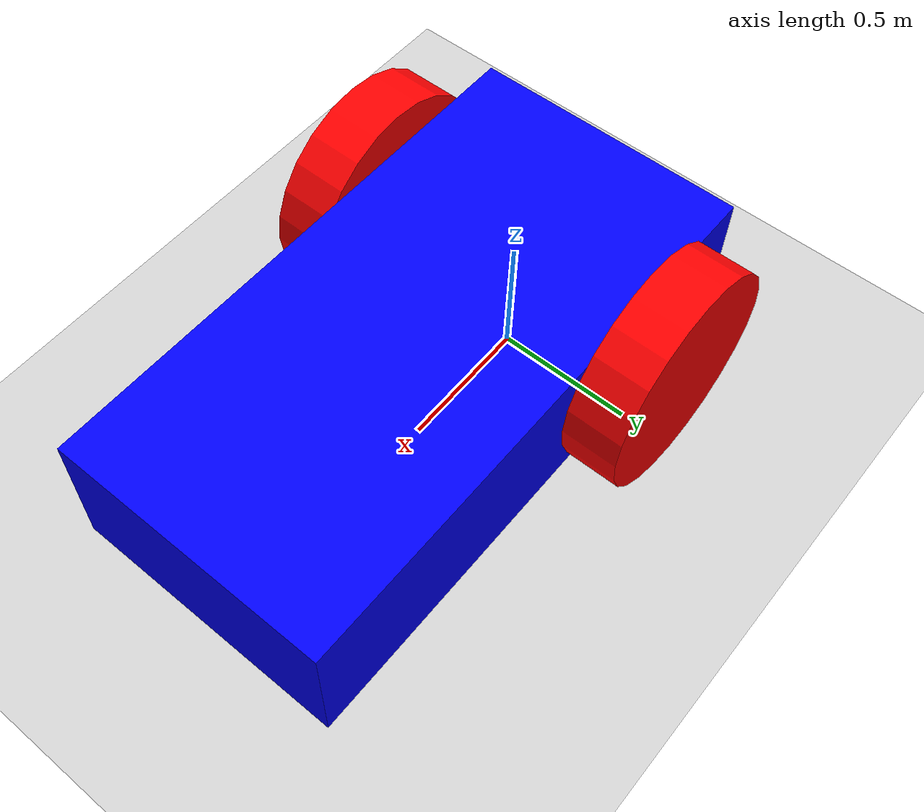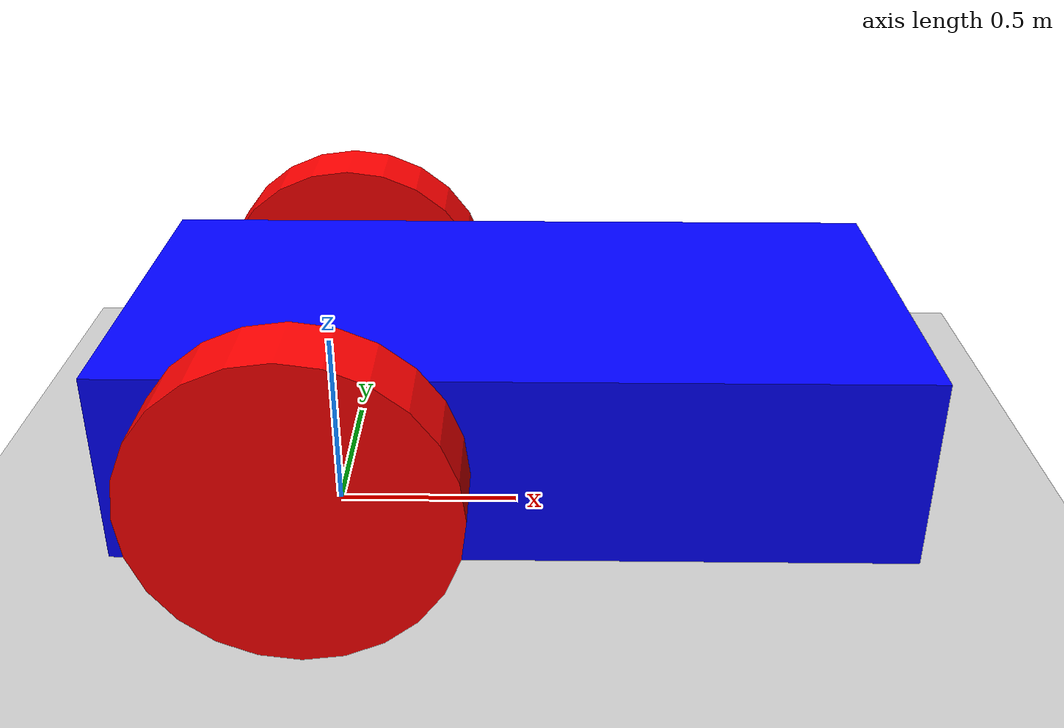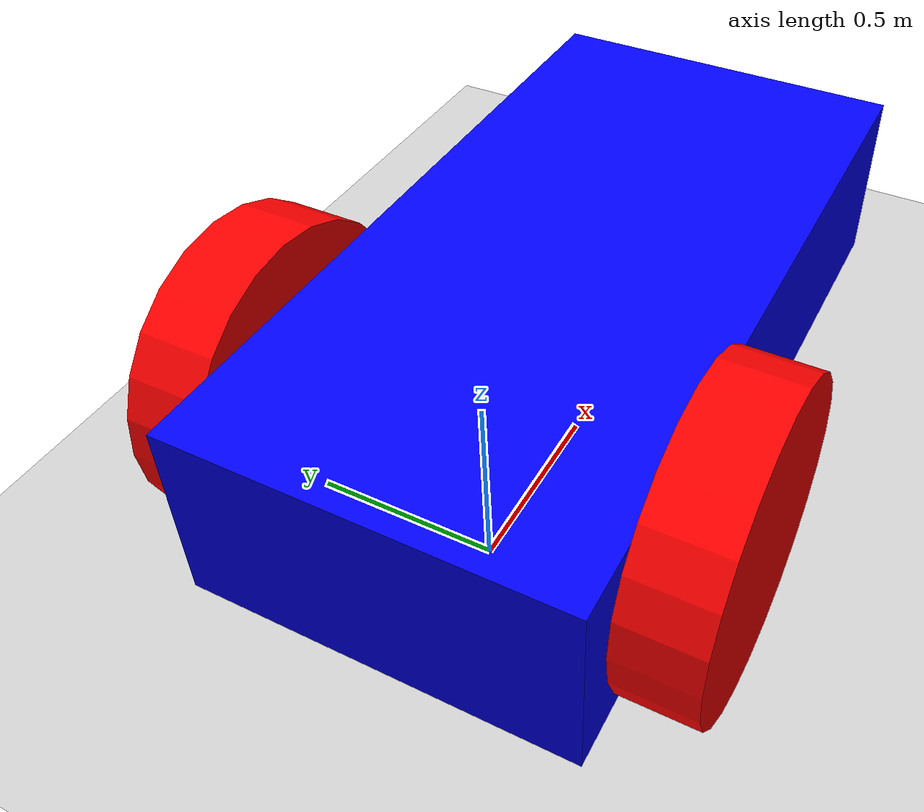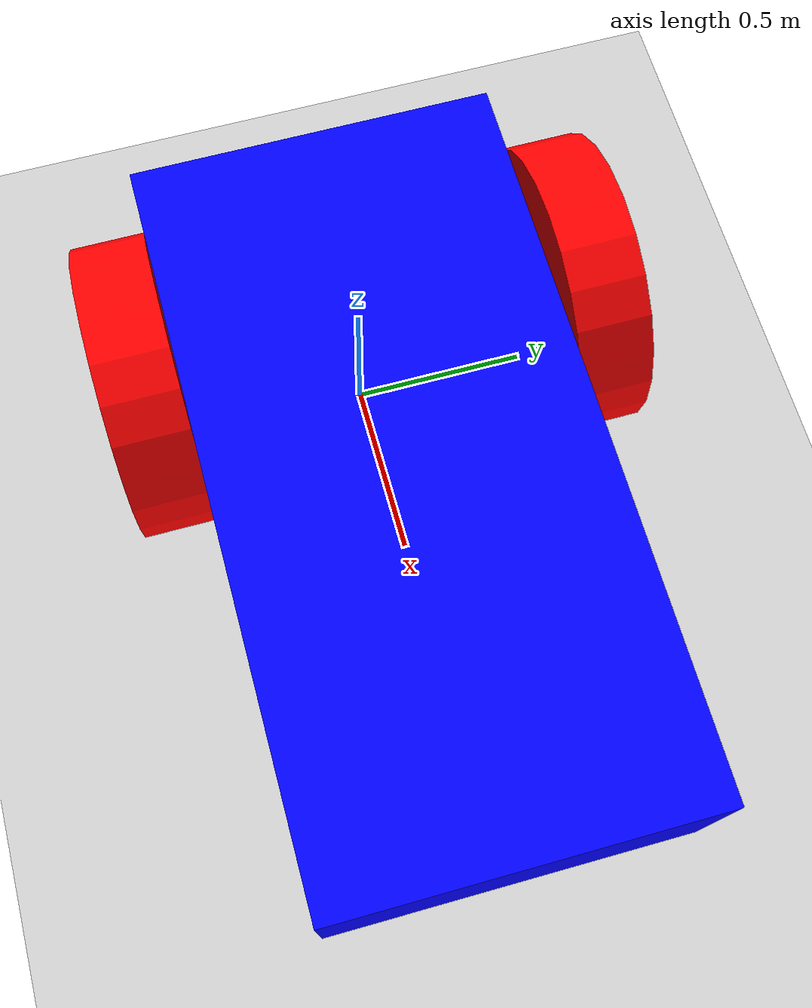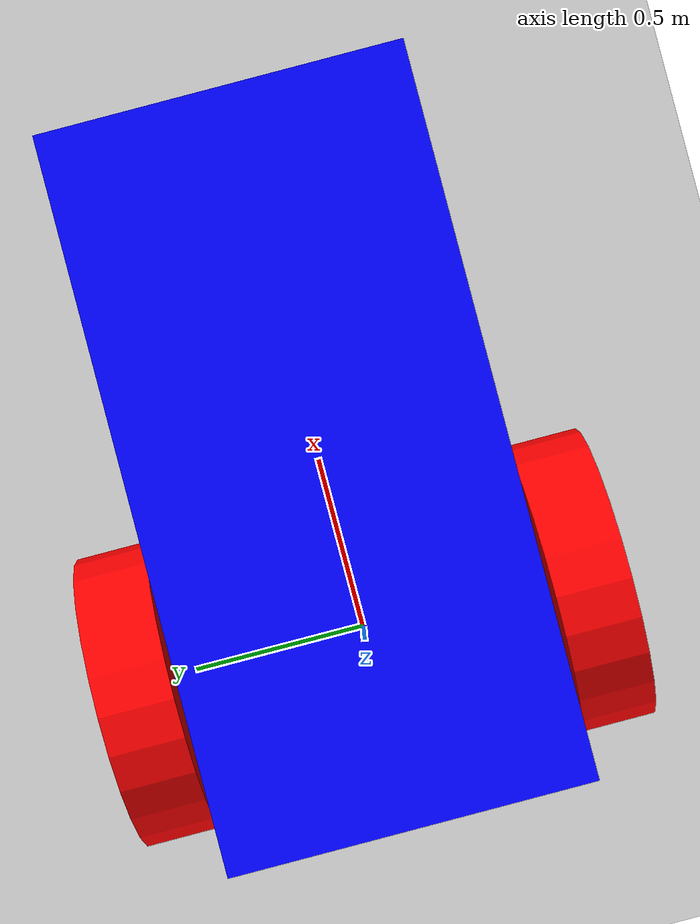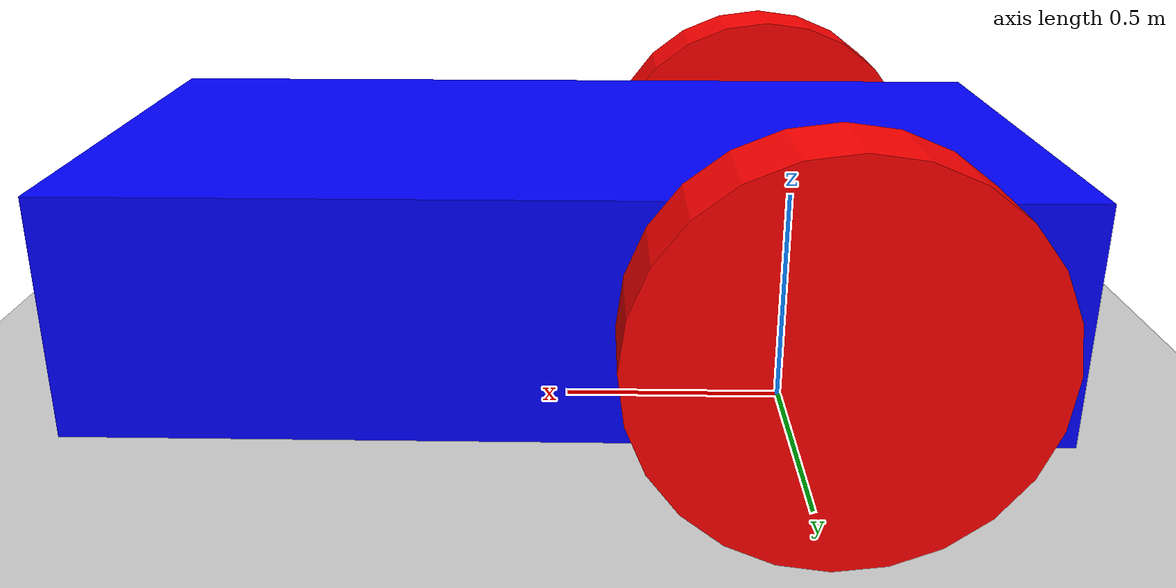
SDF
<?xml version="1.0" ?>
<sdf version="1.10">
    <world name="car_world">
        <physics name="1ms" type="ignored">
            <max_step_size>0.001</max_step_size>
            <real_time_factor>1.0</real_time_factor>
        </physics>
        <plugin
            filename="gz-sim-physics-system"
            name="gz::sim::systems::Physics">
        </plugin>
        <plugin
            filename="gz-sim-user-commands-system"
            name="gz::sim::systems::UserCommands">
        </plugin>
        <plugin
            filename="gz-sim-scene-broadcaster-system"
            name="gz::sim::systems::SceneBroadcaster">
        </plugin>

        <light type="directional" name="sun">
            <cast_shadows>true</cast_shadows>
            <pose>0 0 10 0 0 0</pose>
            <diffuse>0.8 0.8 0.8 1</diffuse>
            <specular>0.2 0.2 0.2 1</specular>
            <attenuation>
                <range>1000</range>
                <constant>0.9</constant>
                <linear>0.01</linear>
                <quadratic>0.001</quadratic>
            </attenuation>
            <direction>-0.5 0.1 -0.9</direction>
        </light>

        <model name="ground_plane">
            <static>true</static>
            <link name="link">
                <collision name="collision">
                <geometry>
                    <plane>
                    <normal>0 0 1</normal>
                    </plane>
                </geometry>
                </collision>
                <visual name="visual">
                <geometry>
                    <plane>
                    <normal>0 0 1</normal>
                    <size>100 100</size>
                    </plane>
                </geometry>
                <material>
                    <ambient>0.8 0.8 0.8 1</ambient>
                    <diffuse>0.8 0.8 0.8 1</diffuse>
                    <specular>0.8 0.8 0.8 1</specular>
                </material>
                </visual>
            </link>
        </model>
            <model name='vehicle_blue' canonical_link='chassis'>
                <pose relative_to='world'>0 0 0 0 0 0</pose>

                <link name='chassis'>
                    <pose relative_to='__model__'>0.5 0 0.4 0 0 0</pose>
                    <inertial> <!--inertial properties of the link mass, inertia matix-->
                        <mass>1.14395</mass>
                        <inertia>
                            <ixx>0.095329</ixx>
                            <ixy>0</ixy>
                            <ixz>0</ixz>
                            <iyy>0.381317</iyy>
                            <iyz>0</iyz>
                            <izz>0.476646</izz>
                        </inertia>
                </inertial>
                <visual name='visual'>
                    <geometry>
                        <box>
                            <size>2.0 1.0 0.5</size>
                        </box>
                    </geometry>
                    <!--let's add color to our link-->
                    <material>
                        <ambient>0.0 0.0 1.0 1</ambient>
                        <diffuse>0.0 0.0 1.0 1</diffuse>
                        <specular>0.0 0.0 1.0 1</specular>
                    </material>
                </visual>
                <collision name='collision'>
                    <geometry>
                        <box>
                            <size>2.0 1.0 0.5</size>
                        </box>
                    </geometry>
                </collision>
            </link>
            <link name='left_wheel'>
                <pose relative_to="chassis">-0.5 0.6 0 -1.5707 0 0</pose>
                <inertial>
                    <mass>1</mass>
                    <inertia>
                        <ixx>0.043333</ixx>
                        <ixy>0</ixy>
                        <ixz>0</ixz>
                        <iyy>0.043333</iyy>
                        <iyz>0</iyz>
                        <izz>0.08</izz>
                    </inertia>
                </inertial>
                  <visual name='visual'>
                    <geometry>
                        <cylinder>
                            <radius>0.4</radius>
                            <length>0.2</length>
                        </cylinder>
                    </geometry>
                    <material>
                        <ambient>1.0 0.0 0.0 1</ambient>
                        <diffuse>1.0 0.0 0.0 1</diffuse>
                        <specular>1.0 0.0 0.0 1</specular>
                    </material>
                </visual>
                <collision name='collision'>
                    <geometry>
                        <cylinder>
                            <radius>0.4</radius>
                            <length>0.2</length>
                        </cylinder>
                    </geometry>
                </collision>
            </link>

            <!--The same as left wheel but with different position-->
            <link name='right_wheel'>
                <pose relative_to="chassis">-0.5 -0.6 0 -1.5707 0 0</pose> <!--angles are in radian-->
                <inertial>
                    <mass>1</mass>
                    <inertia>
                        <ixx>0.043333</ixx>
                        <ixy>0</ixy>
                        <ixz>0</ixz>
                        <iyy>0.043333</iyy>
                        <iyz>0</iyz>
                        <izz>0.08</izz>
                    </inertia>
                </inertial>
                <visual name='visual'>
                    <geometry>
                        <cylinder>
                            <radius>0.4</radius>
                            <length>0.2</length>
                        </cylinder>
                    </geometry>
                    <material>
                        <ambient>1.0 0.0 0.0 1</ambient>
                        <diffuse>1.0 0.0 0.0 1</diffuse>
                        <specular>1.0 0.0 0.0 1</specular>
                    </material>
                </visual>
                <collision name='collision'>
                    <geometry>
                        <cylinder>
                            <radius>0.4</radius>
                            <length>0.2</length>
                        </cylinder>
                    </geometry>
                </collision>
            </link>
        </model>

    </world>
</sdf>
